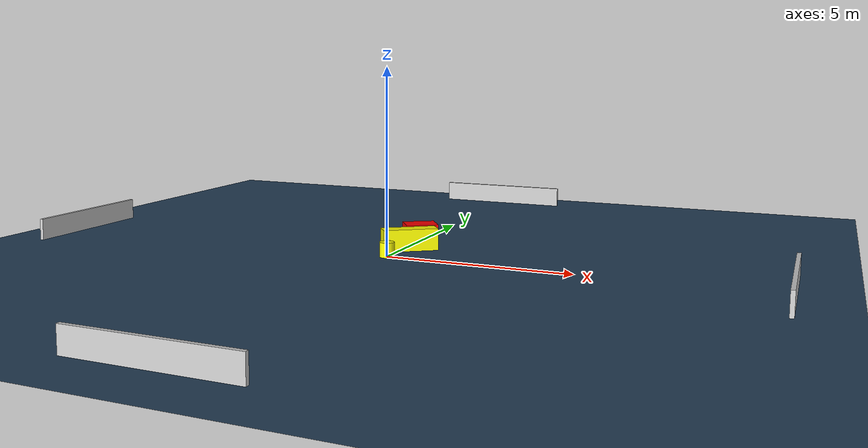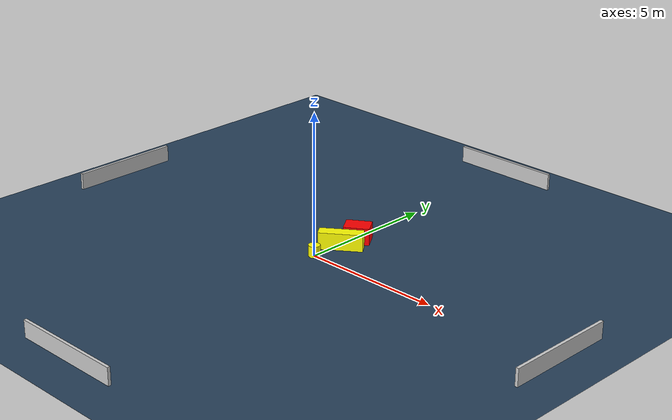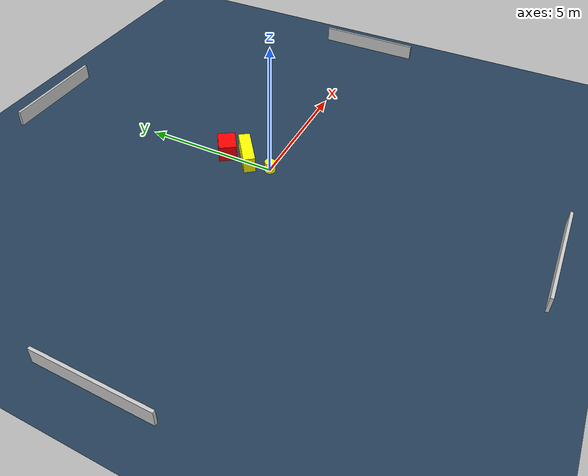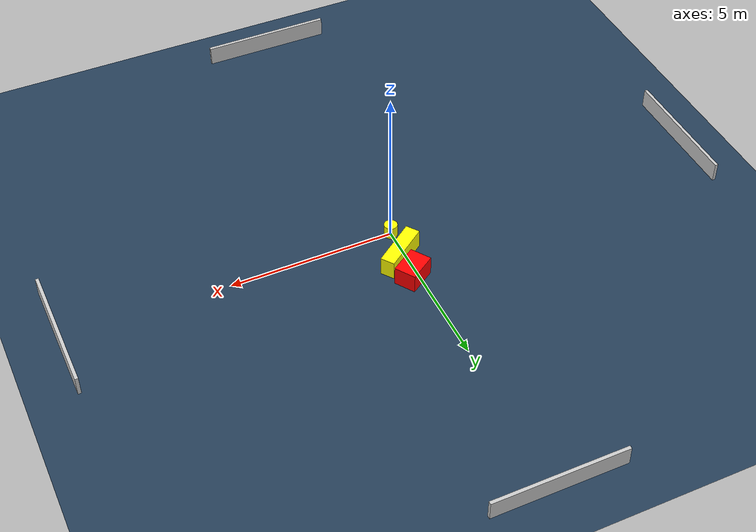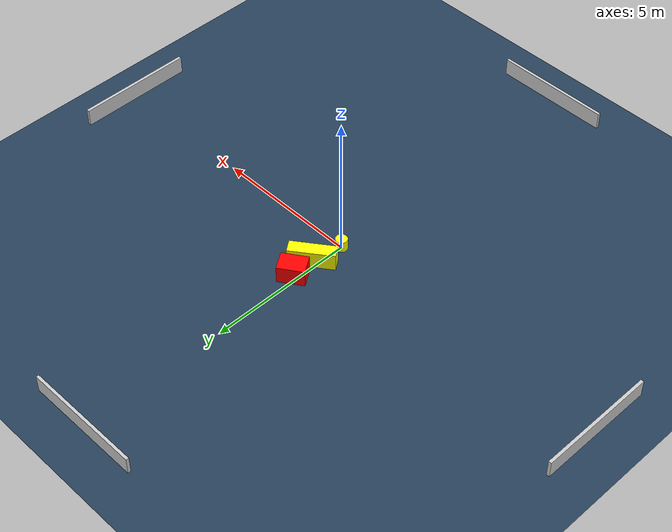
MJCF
<?xml version="1.0" ?>
<mujoco model="generated_environment">
  <option timestep="0.01" integrator="RK4" cone="elliptic"/>
  <default>
    <geom density="1"/>
  </default>
  <asset>
    <texture builtin="gradient" height="3072" name="skybox" rgb1="0.3 0.5 0.7" rgb2="0 0 0" type="skybox" width="512"/>
    <texture builtin="checker" height="300" name="groundplane" rgb1="0.2 0.3 0.4" rgb2="0.1 0.2 0.3" type="2d" width="300"/>
    <material name="groundplane" reflectance="0.2" texrepeat="5 5" texture="groundplane"/>
  </asset>
  <worldbody>
    <light dir="0 0 -1" directional="true" pos="0 0 1.5"/>
    <geom condim="3" friction="0.5 0.005 0.001" material="groundplane" name="floor" pos="0 0 0" size="0 0 0.05" type="plane"/>
    <body name="walls">
      <geom name="wall_1" condim="4" pos="-10.0 0.0 0.3" rgba="0.800000011920929 0.800000011920929 0.800000011920929 1.0" size="0.05 2.0 0.3" type="box"/>
      <geom name="wall_2" condim="4" pos="10.0 0.0 0.3" rgba="0.800000011920929 0.800000011920929 0.800000011920929 1.0" size="0.05 2.0 0.3" type="box"/>
      <geom name="wall_3" condim="4" pos="0.0 -10.0 0.3" rgba="0.800000011920929 0.800000011920929 0.800000011920929 1.0" size="2.0 0.05 0.3" type="box"/>
      <geom name="wall_4" condim="4" pos="0.0 10.0 0.3" rgba="0.800000011920929 0.800000011920929 0.800000011920929 1.0" size="2.0 0.05 0.3" type="box"/>
    </body>
    <body name="robot">
      <joint name="joint_x" type="slide" pos="0 0 0" axis="1 0 0"/>
      <joint name="joint_y" type="slide" pos="0 0 0" axis="0 1 0"/>
      <geom name="robot" type="cylinder" pos="0.0 0.0 0.2" size="0.2 0.2 0.0" mass="5.0" friction="1.0 0.005 0.0001" condim="4" rgba="1.0 1.0 0.0 1.0"/>
    </body>
    <body name="obstacle_1_movable">
      <geom name="obstacle_1_movable" condim="4" pos="0.19047180684052292 1.0609151632893512 0.3" euler="0 0 36.15289296491432" friction="0.0 0.005 0.001" rgba="1.0 1.0 0.0 1.0" size="0.7600729761860427 0.21741834702676133 0.3" type="box" mass="0.1"/>
      <joint type="free"/>
    </body>
    <body name="obstacle_2_static">
      <geom name="obstacle_2_static" condim="4" pos="0.17890962258563337 1.881024677417777 0.3" euler="0 0 123.63858942489688" friction="0.0 0.005 0.001" rgba="1.0 0.0 0.0 1.0" size="0.3302126647421094 0.4473438165769804 0.3" type="box"/>
    </body>
  </worldbody>
  <actuator>
    <motor name="actuator_x" joint="joint_x" gear="1" ctrlrange="-1 1"/>
    <motor name="actuator_y" joint="joint_y" gear="1" ctrlrange="-1 1"/>
  </actuator>
</mujoco>
